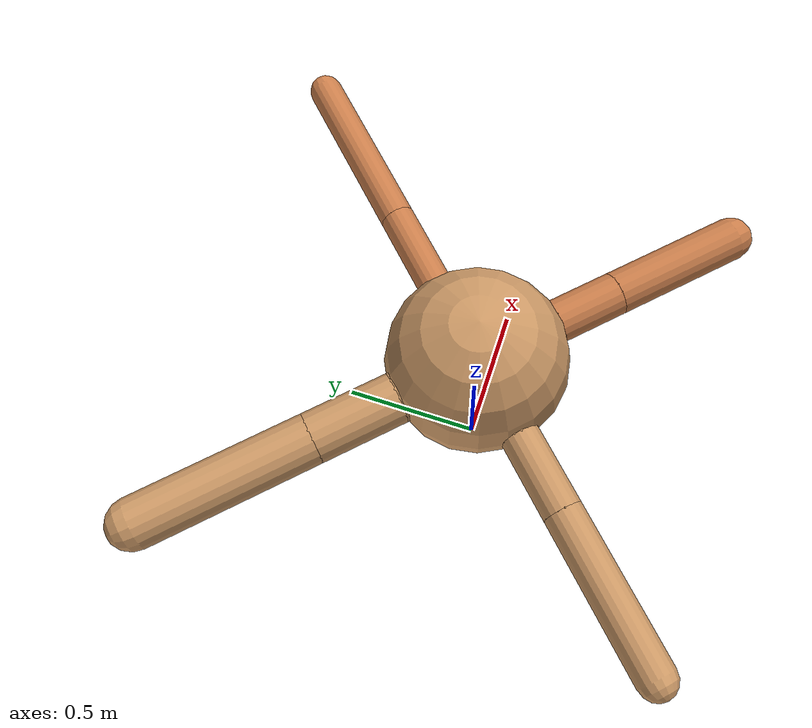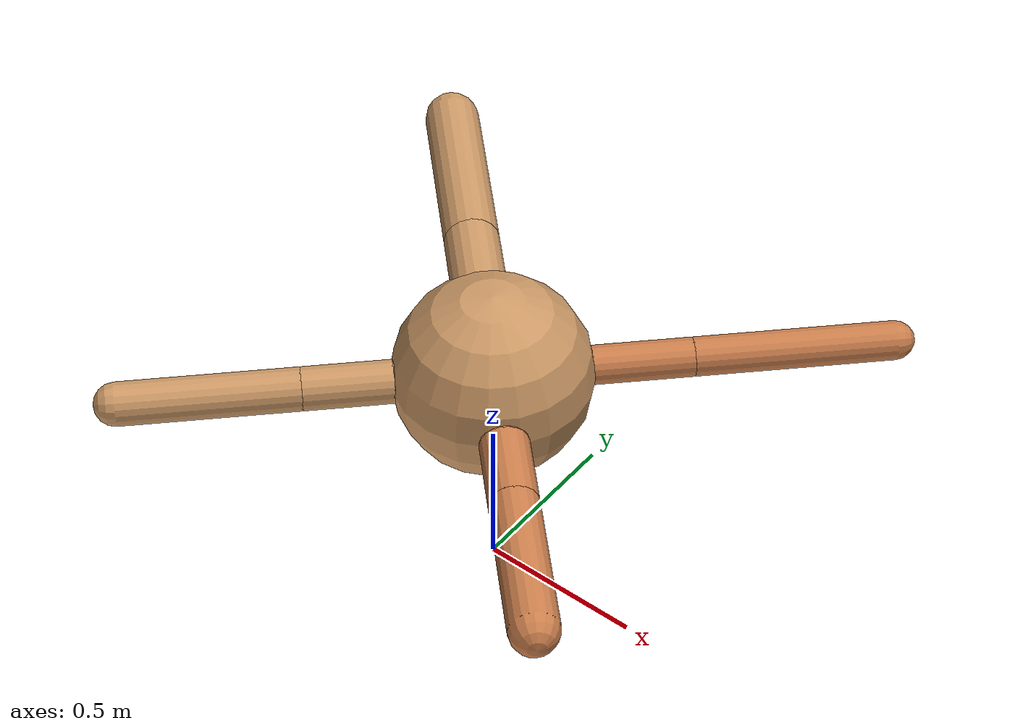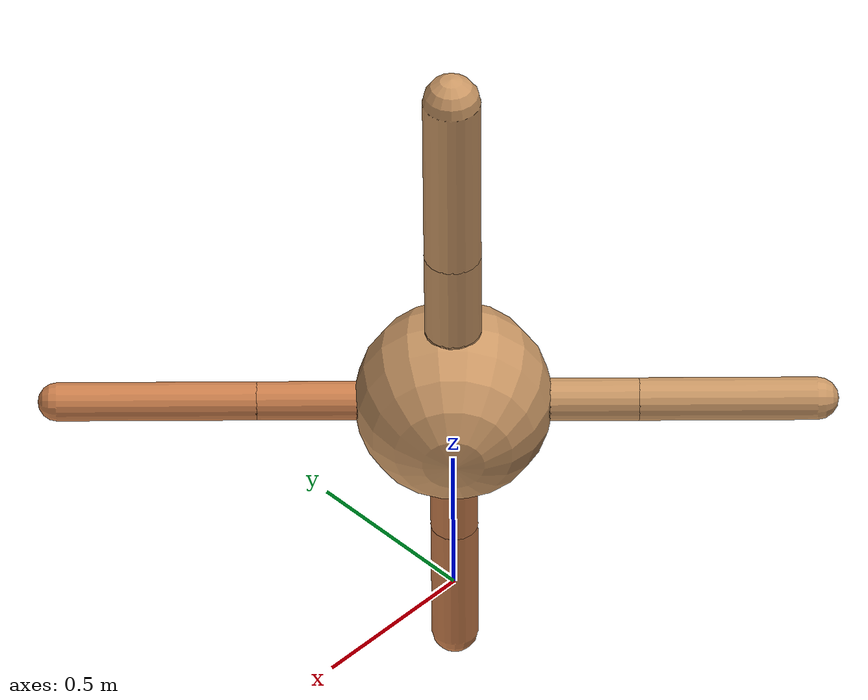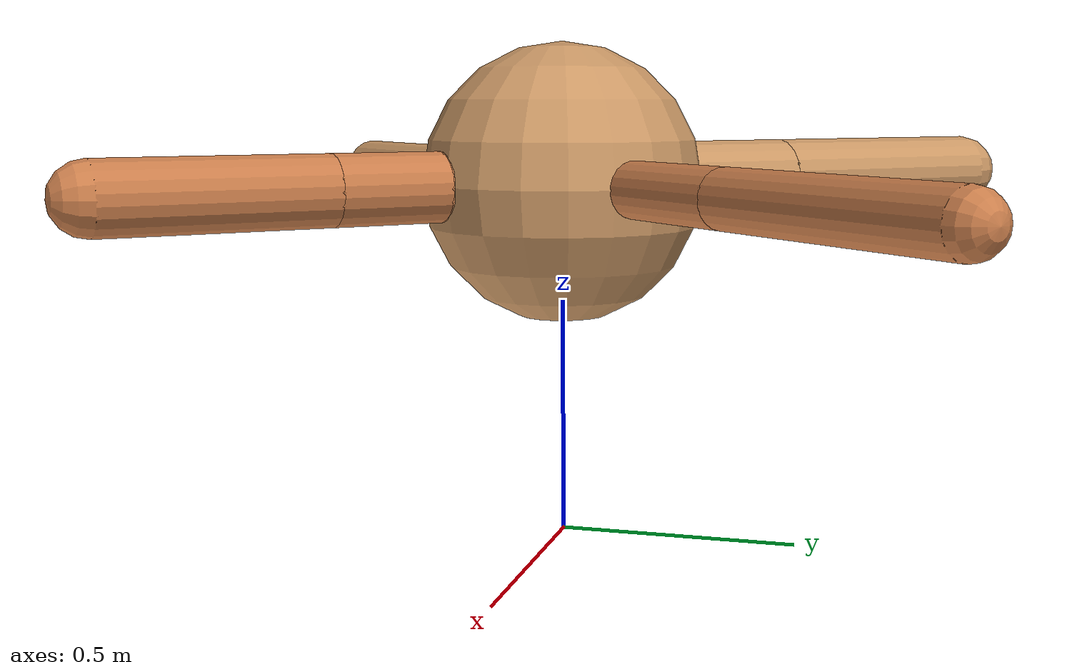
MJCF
<?xml version="1.0" ?>
<mujoco model="ant">

	<compiler angle="degree" coordinate="local" inertiafromgeom="true"/>

	<option integrator="RK4" timestep="0.01"/>

	<custom>

		<numeric data="0.0 0.0 0.55 1.0 0.0 0.0 0.0 0.0 1.0 0.0 -1.0 0.0 -1.0 0.0 1.0" name="init_qpos"/>

	</custom>

	<default>

		<joint armature="1" damping="1" limited="true"/>

		<geom conaffinity="0" condim="3" density="5.0" friction="1.5 0.1 0.1" margin="0.01" rgba="0.8 0.6 0.4 1"/>

	</default>

	<worldbody>

		<body name="torso" pos="0 0 0.75">

			<geom name="torso_geom" pos="0 0 0" size="0.2942464109809216" type="sphere"/>

			<!--joint armature="0" damping="0" limited="false" margin="0.01" name="root" pos="0 0 0" type="free"/-->

			<body name="front_left_leg" pos="0 0 0">

				<geom fromto="0 0 0 0.2 0.2 0" name="aux_1_geom" size="0.05680429270385757" type="capsule" rgba=".8 .5 .3 1"/>

				<body name="aux_1" pos="0.2 0.2 0">

					<joint axis="0 0 1" name="hip_1" pos="0.0 0.0 0.0" range="-40 40" type="hinge"/>

					<geom fromto="0 0 0 0.20780207387217464 0.20780207387217464 0" name="left_leg_geom" size="0.05680429270385757" type="capsule" rgba=".8 .5 .3 1"/>

					<body pos="0.20780207387217464 0.20780207387217464 0" name="front_left_foot">

						<joint axis="-1 1 0" name="ankle_1" pos="0.0 0.0 0.0" range="30 100" type="hinge"/>

						<geom fromto="0 0 0 0.4156041477443493 0.4156041477443493 0" name="left_ankle_geom" size="0.05680429270385757" type="capsule" rgba=".8 .5 .3 1"/>

					</body>

				</body>

			</body>

			<body name="front_right_leg" pos="0 0 0">

				<geom fromto="0 0 0 -0.2 0.2 0" name="aux_2_geom" size="0.08363500560620256" type="capsule"/>

				<body name="aux_2" pos="-0.2 0.2 0">

					<joint axis="0 0 1" name="hip_2" pos="0.0 0.0 0.0" range="-40 40" type="hinge"/>

					<geom fromto="0 0 0 -0.20274526733528117 0.20274526733528117 0" name="right_leg_geom" size="0.08363500560620256" type="capsule"/>

					<body pos="-0.20274526733528117 0.20274526733528117 0" name="front_right_foot">

						<joint axis="1 1 0" name="ankle_2" pos="0.0 0.0 0.0" range="-100 -30" type="hinge"/>

						<geom fromto="0 0 0 -0.40549053467056234 0.40549053467056234 0" name="right_ankle_geom" size="0.08363500560620256" type="capsule"/>

					</body>

				</body>

			</body>

			<body name="left_back_leg" pos="0 0 0">

				<geom fromto="0 0 0 -0.2 -0.2 0" name="aux_3_geom" size="0.06307746938508801" type="capsule"/>

				<body name="aux_3" pos="-0.2 -0.2 0">

					<joint axis="0 0 1" name="hip_3" pos="0.0 0.0 0.0" range="-40 40" type="hinge"/>

					<geom fromto="0 0 0 -0.1851358553781661 -0.1851358553781661 0" name="back_leg_geom" size="0.06307746938508801" type="capsule"/>

					<body pos="-0.1851358553781661 -0.1851358553781661 0" name="left_back_foot">

						<joint axis="-1 1 0" name="ankle_3" pos="0.0 0.0 0.0" range="-100 -30" type="hinge"/>

						<geom fromto="0 0 0 -0.3702717107563322 -0.3702717107563322 0" name="third_ankle_geom" size="0.06307746938508801" type="capsule"/>

					</body>

				</body>

			</body>

			<body name="right_back_leg" pos="0 0 0">

				<geom fromto="0 0 0 0.2 -0.2 0" name="aux_4_geom" size="0.0718024751506873" type="capsule" rgba=".8 .5 .3 1"/>

				<body name="aux_4" pos="0.2 -0.2 0">

					<joint axis="0 0 1" name="hip_4" pos="0.0 0.0 0.0" range="-40 40" type="hinge"/>

					<geom fromto="0 0 0 0.15833809832043494 -0.15833809832043494 0" name="rightback_leg_geom" size="0.0718024751506873" type="capsule" rgba=".8 .5 .3 1"/>

					<body pos="0.15833809832043494 -0.15833809832043494 0" name="right_back_foot">

						<joint axis="1 1 0" name="ankle_4" pos="0.0 0.0 0.0" range="30 100" type="hinge"/>

						<geom fromto="0 0 0 0.3166761966408699 -0.3166761966408699 0" name="fourth_ankle_geom" size="0.0718024751506873" type="capsule" rgba=".8 .5 .3 1"/>

					</body>

				</body>

			</body>

		</body>

	</worldbody>

	<actuator>

		<motor ctrllimited="true" ctrlrange="-1.0 1.0" joint="hip_4" gear="150"/>

		<motor ctrllimited="true" ctrlrange="-1.0 1.0" joint="ankle_4" gear="150"/>

		<motor ctrllimited="true" ctrlrange="-1.0 1.0" joint="hip_1" gear="150"/>

		<motor ctrllimited="true" ctrlrange="-1.0 1.0" joint="ankle_1" gear="150"/>

		<motor ctrllimited="true" ctrlrange="-1.0 1.0" joint="hip_2" gear="150"/>

		<motor ctrllimited="true" ctrlrange="-1.0 1.0" joint="ankle_2" gear="150"/>

		<motor ctrllimited="true" ctrlrange="-1.0 1.0" joint="hip_3" gear="150"/>

		<motor ctrllimited="true" ctrlrange="-1.0 1.0" joint="ankle_3" gear="150"/>

	</actuator>

</mujoco>
